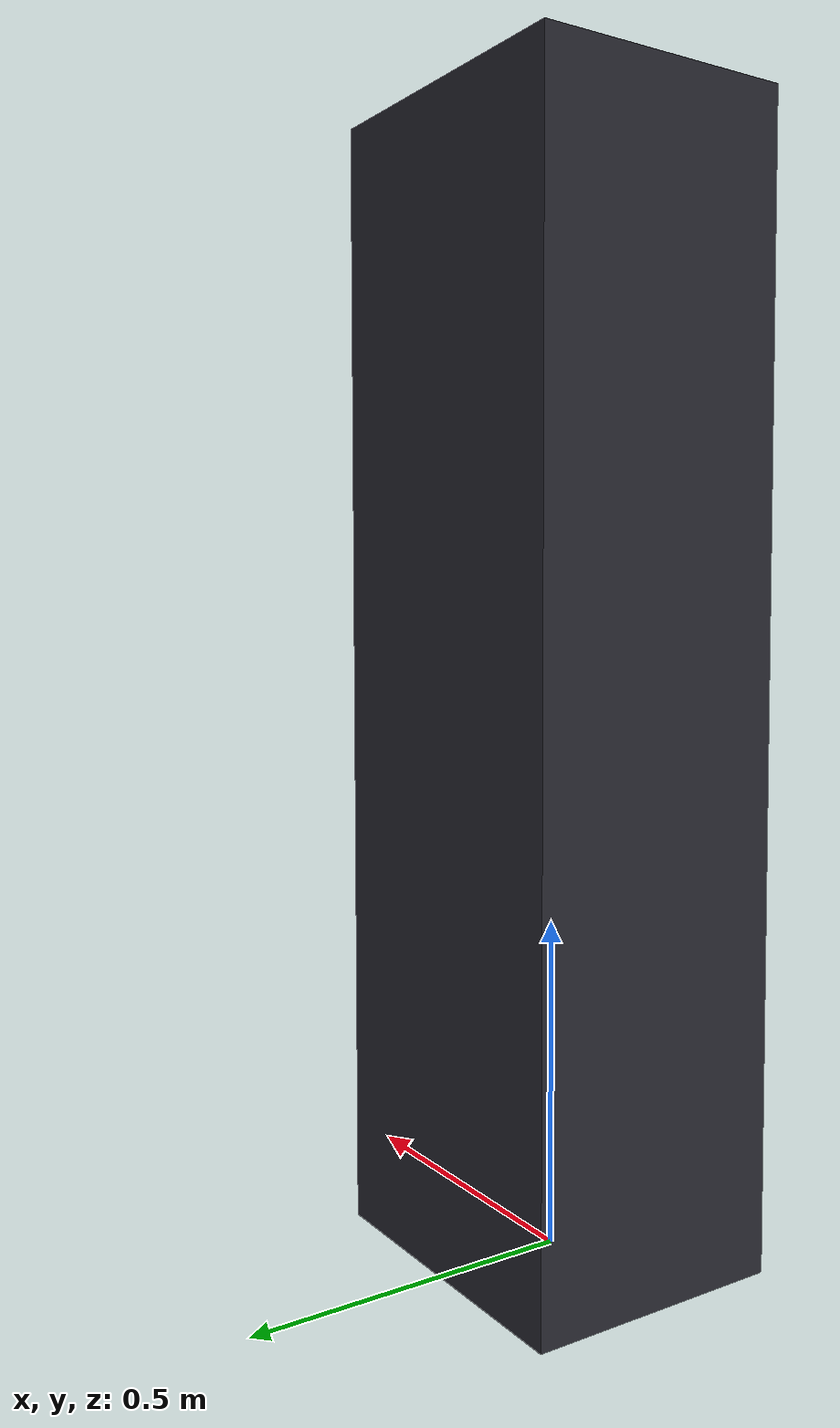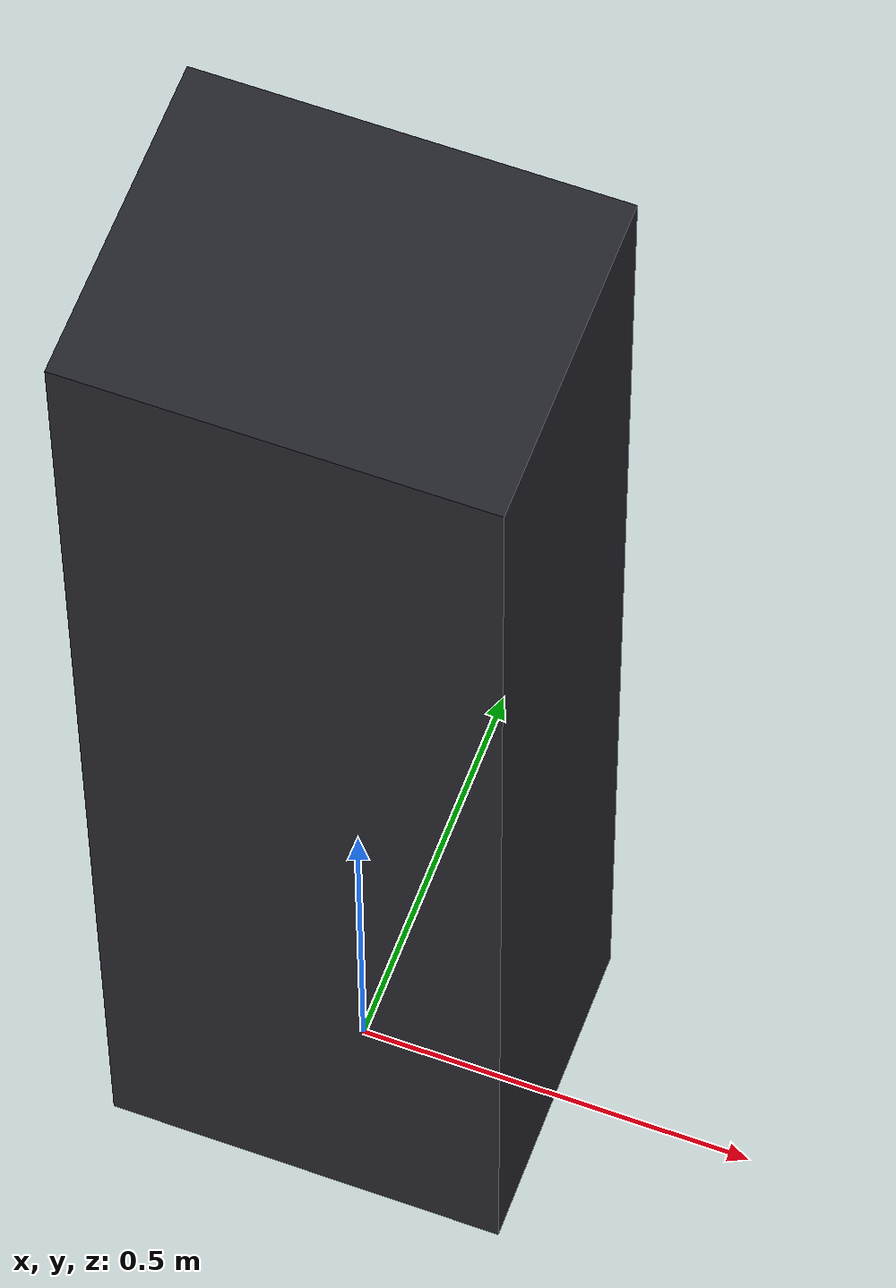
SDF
<?xml version="1.0" ?>

<sdf version="1.8">
  <model name="person_obstacle">
    <static>true</static>
    <link name="link">
      <pose>0 0 0.85 0 0 0</pose>
      <collision name="collision">
        <geometry>
          <box>
            <size>0.5 0.4 1.7</size>
          </box>
        </geometry>
      </collision>
      <visual name="visual">
        <geometry>
          <box>
            <size>0.5 0.4 1.7</size>
          </box>
        </geometry>
        <material>
          <ambient>0.15 0.15 0.18 1</ambient>
          <diffuse>0.15 0.15 0.18 1</diffuse>
          <specular>0.05 0.05 0.05 1</specular>
        </material>
      </visual>
    </link>
  </model>
</sdf>
